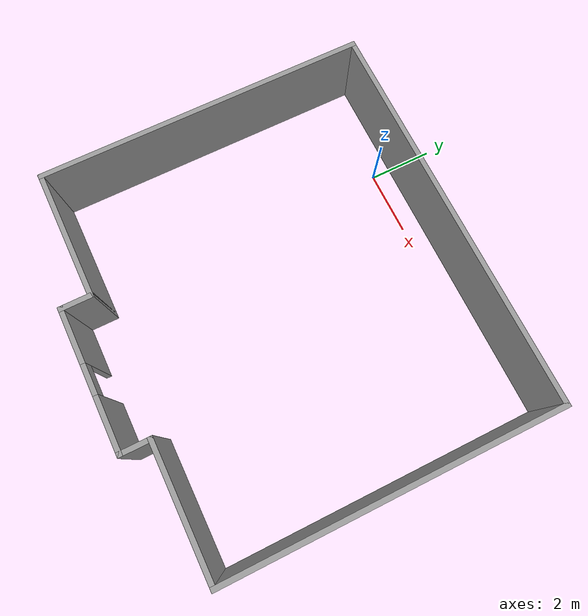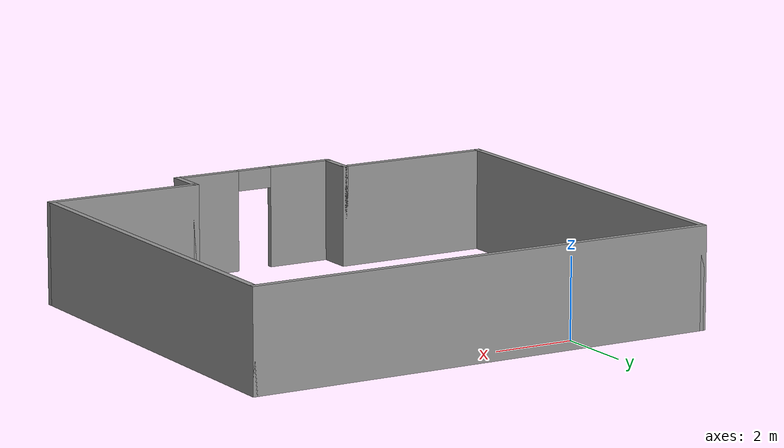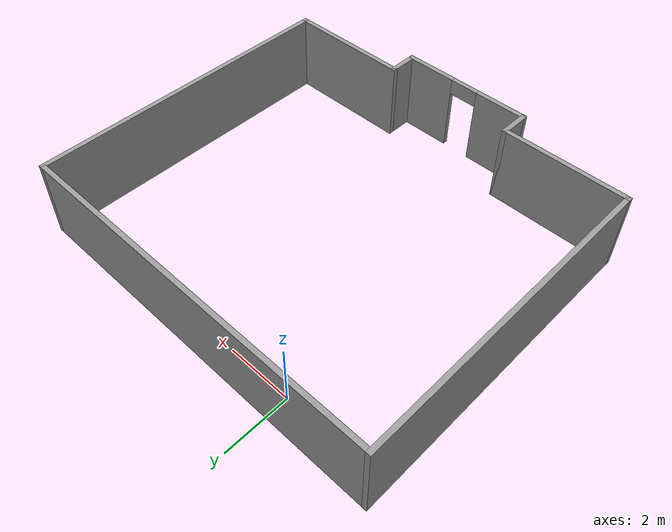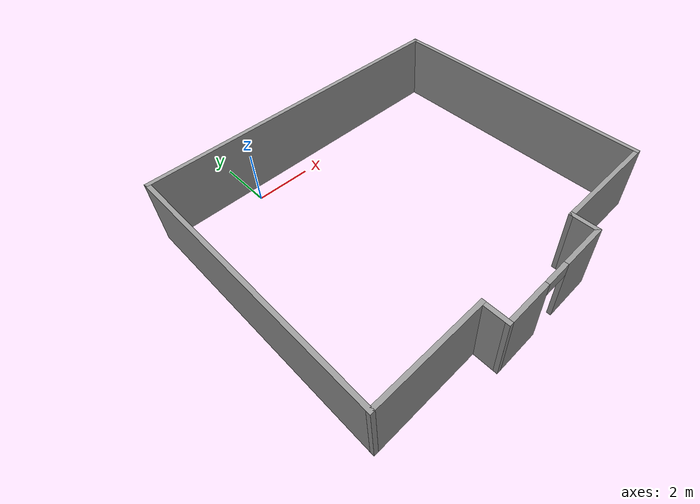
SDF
<?xml version='1.0'?>
<sdf version='1.6'>
  <model name='husky_SAGAT_second_half_docker'>
    <pose frame=''>2.74442 -4.70187 0 0 -0 0</pose>
    <link name='Wall_10'>
      <collision name='Wall_10_Collision'>
        <geometry>
          <box>
            <size>4 0.15 2.5</size>
          </box>
        </geometry>
        <pose frame=''>0 0 1.25 0 -0 0</pose>
      </collision>
      <visual name='Wall_10_Visual'>
        <pose frame=''>0 0 1.25 0 -0 0</pose>
        <geometry>
          <box>
            <size>4 0.15 2.5</size>
          </box>
        </geometry>
        <material>
          <script>
            <uri>file://media/materials/scripts/gazebo.material</uri>
            <name>Gazebo/Grey</name>
          </script>
          <ambient>1 1 1 1</ambient>
        </material>
        <meta>
          <layer>0</layer>
        </meta>
      </visual>
      <pose frame=''>-4 -4.5 0 0 -0 0</pose>
    </link>
    <link name='Wall_12'>
      <collision name='Wall_12_Collision'>
        <geometry>
          <box>
            <size>4 0.15 2.5</size>
          </box>
        </geometry>
        <pose frame=''>0 0 1.25 0 -0 0</pose>
      </collision>
      <visual name='Wall_12_Visual'>
        <pose frame=''>0 0 1.25 0 -0 0</pose>
        <geometry>
          <box>
            <size>4 0.15 2.5</size>
          </box>
        </geometry>
        <material>
          <script>
            <uri>file://media/materials/scripts/gazebo.material</uri>
            <name>Gazebo/Grey</name>
          </script>
          <ambient>1 1 1 1</ambient>
        </material>
        <meta>
          <layer>0</layer>
        </meta>
      </visual>
      <pose frame=''>4 -4.5 0 0 -0 3.14159</pose>
    </link>
    <link name='Wall_14'>
      <collision name='Wall_14_Collision'>
        <geometry>
          <box>
            <size>1 0.15 2.5</size>
          </box>
        </geometry>
        <pose frame=''>0 0 1.25 0 -0 0</pose>
      </collision>
      <visual name='Wall_14_Visual'>
        <pose frame=''>0 0 1.25 0 -0 0</pose>
        <geometry>
          <box>
            <size>1 0.15 2.5</size>
          </box>
        </geometry>
        <material>
          <script>
            <uri>file://media/materials/scripts/gazebo.material</uri>
            <name>Gazebo/Grey</name>
          </script>
          <ambient>1 1 1 1</ambient>
        </material>
        <meta>
          <layer>0</layer>
        </meta>
      </visual>
      <pose frame=''>-2.075 -4.925 0 0 -0 -1.5708</pose>
    </link>
    <link name='Wall_2'>
      <collision name='Wall_2_Collision'>
        <geometry>
          <box>
            <size>10 0.15 2.5</size>
          </box>
        </geometry>
        <pose frame=''>0 0 1.25 0 -0 0</pose>
      </collision>
      <visual name='Wall_2_Visual'>
        <pose frame=''>0 0 1.25 0 -0 0</pose>
        <geometry>
          <box>
            <size>10 0.15 2.5</size>
          </box>
        </geometry>
        <material>
          <script>
            <uri>file://media/materials/scripts/gazebo.material</uri>
            <name>Gazebo/Grey</name>
          </script>
          <ambient>1 1 1 1</ambient>
        </material>
        <meta>
          <layer>0</layer>
        </meta>
      </visual>
      <pose frame=''>-5.925 0.425 0 0 -0 1.5708</pose>
    </link>
    <link name='Wall_20'>
      <collision name='Wall_20_Collision'>
        <geometry>
          <box>
            <size>1 0.15 2.5</size>
          </box>
        </geometry>
        <pose frame=''>0 0 1.25 0 -0 0</pose>
      </collision>
      <visual name='Wall_20_Visual'>
        <pose frame=''>0 0 1.25 0 -0 0</pose>
        <geometry>
          <box>
            <size>1 0.15 2.5</size>
          </box>
        </geometry>
        <material>
          <script>
            <uri>file://media/materials/scripts/gazebo.material</uri>
            <name>Gazebo/Grey</name>
          </script>
          <ambient>1 1 1 1</ambient>
        </material>
        <meta>
          <layer>0</layer>
        </meta>
      </visual>
      <pose frame=''>2.075 -4.925 0 0 -0 -1.5708</pose>
    </link>
    <link name='Wall_21'>
      <pose frame=''>0 -5.35 0 0 -0 3.14159</pose>
      <visual name='Wall_21_Visual_0'>
        <pose frame=''>-1.29994 0 1.25 0 -0 0</pose>
        <geometry>
          <box>
            <size>1.70011 0.15 2.5</size>
          </box>
        </geometry>
        <material>
          <script>
            <uri>file://media/materials/scripts/gazebo.material</uri>
            <name>Gazebo/Grey</name>
          </script>
          <ambient>1 1 1 1</ambient>
        </material>
        <meta>
          <layer>0</layer>
        </meta>
      </visual>
      <collision name='Wall_21_Collision_0'>
        <geometry>
          <box>
            <size>1.70011 0.15 2.5</size>
          </box>
        </geometry>
        <pose frame=''>-1.29994 0 1.25 0 -0 0</pose>
      </collision>
      <visual name='Wall_21_Visual_1'>
        <pose frame=''>1.30006 0 1.25 0 -0 0</pose>
        <geometry>
          <box>
            <size>1.69989 0.15 2.5</size>
          </box>
        </geometry>
        <material>
          <script>
            <uri>file://media/materials/scripts/gazebo.material</uri>
            <name>Gazebo/Grey</name>
          </script>
          <ambient>1 1 1 1</ambient>
        </material>
        <meta>
          <layer>0</layer>
        </meta>
      </visual>
      <collision name='Wall_21_Collision_1'>
        <geometry>
          <box>
            <size>1.69989 0.15 2.5</size>
          </box>
        </geometry>
        <pose frame=''>1.30006 0 1.25 0 -0 0</pose>
      </collision>
      <visual name='Wall_21_Visual_2'>
        <pose frame=''>0.000113 0 2.25 0 -0 0</pose>
        <geometry>
          <box>
            <size>0.9 0.15 0.5</size>
          </box>
        </geometry>
        <material>
          <script>
            <uri>file://media/materials/scripts/gazebo.material</uri>
            <name>Gazebo/Grey</name>
          </script>
          <ambient>1 1 1 1</ambient>
        </material>
        <meta>
          <layer>0</layer>
        </meta>
      </visual>
      <collision name='Wall_21_Collision_2'>
        <geometry>
          <box>
            <size>0.9 0.15 0.5</size>
          </box>
        </geometry>
        <pose frame=''>0.000113 0 2.25 0 -0 0</pose>
      </collision>
    </link>
    <link name='Wall_4'>
      <collision name='Wall_4_Collision'>
        <geometry>
          <box>
            <size>12 0.15 2.5</size>
          </box>
        </geometry>
        <pose frame=''>0 0 1.25 0 -0 0</pose>
      </collision>
      <visual name='Wall_4_Visual'>
        <pose frame=''>0 0 1.25 0 -0 0</pose>
        <geometry>
          <box>
            <size>12 0.15 2.5</size>
          </box>
        </geometry>
        <material>
          <script>
            <uri>file://media/materials/scripts/gazebo.material</uri>
            <name>Gazebo/Grey</name>
          </script>
          <ambient>1 1 1 1</ambient>
        </material>
        <meta>
          <layer>0</layer>
        </meta>
      </visual>
      <pose frame=''>0 5.35 0 0 -0 0</pose>
    </link>
    <link name='Wall_7'>
      <collision name='Wall_7_Collision'>
        <geometry>
          <box>
            <size>10 0.15 2.5</size>
          </box>
        </geometry>
        <pose frame=''>0 0 1.25 0 -0 0</pose>
      </collision>
      <visual name='Wall_7_Visual'>
        <pose frame=''>0 0 1.25 0 -0 0</pose>
        <geometry>
          <box>
            <size>10 0.15 2.5</size>
          </box>
        </geometry>
        <material>
          <script>
            <uri>file://media/materials/scripts/gazebo.material</uri>
            <name>Gazebo/Grey</name>
          </script>
          <ambient>1 1 1 1</ambient>
        </material>
        <meta>
          <layer>0</layer>
        </meta>
      </visual>
      <pose frame=''>5.925 0.425 0 0 -0 -1.5708</pose>
    </link>
    <static>1</static>
  </model>
</sdf>
